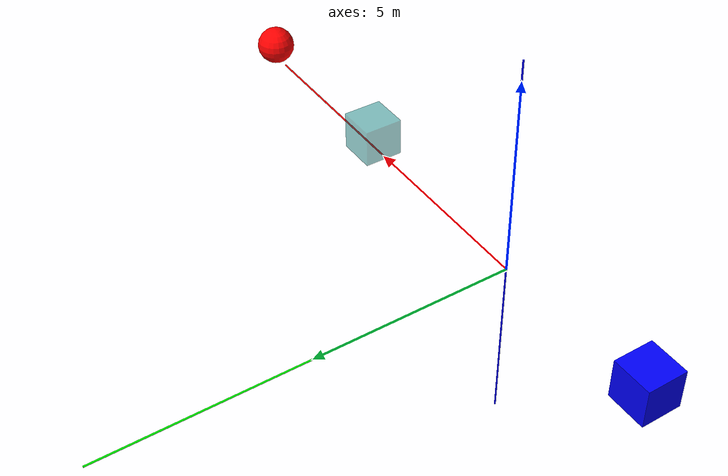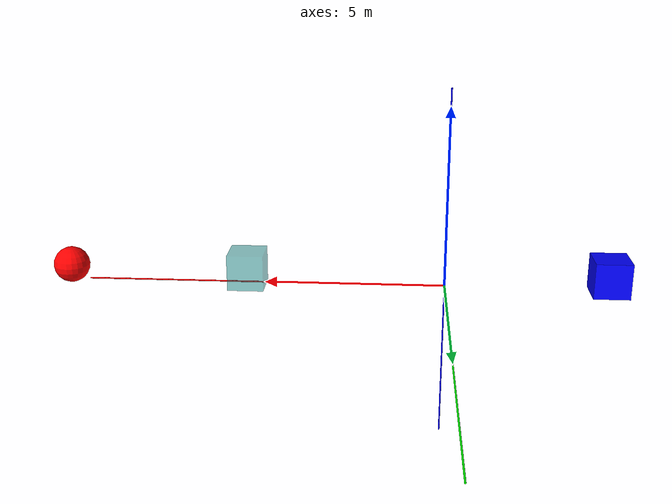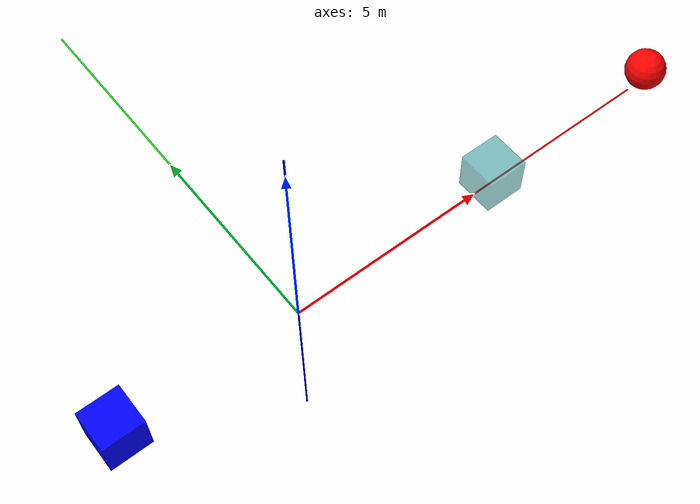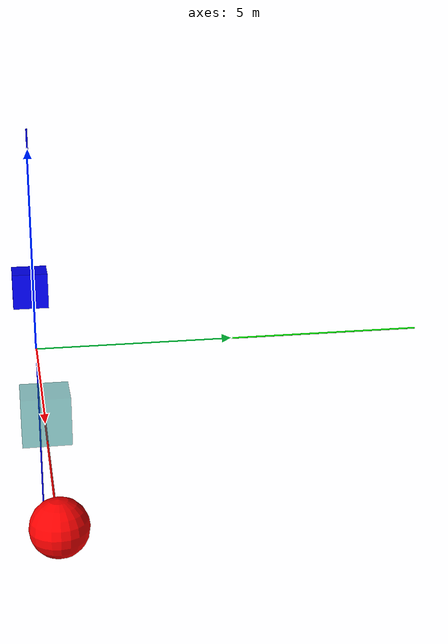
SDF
<?xml version="1.0" ?>
<sdf version="1.8">

    <!--
    To run the gazebo sim from the bridge
    gz sim -v 4 -r src/avoa3d/sdf/single_static.sdf
    -->

    <world name="3d_world">

        <physics name="1ms" type="ignored">
            <max_step_size>0.001</max_step_size>
            <real_time_factor>1.0</real_time_factor>
        </physics>
        <plugin
            filename="libignition-gazebo-physics-system.so"
            name="ignition::gazebo::systems::Physics">
        </plugin>
        <plugin
            filename="libignition-gazebo-user-commands-system.so"
            name="ignition::gazebo::systems::UserCommands">
        </plugin>
        <plugin
            filename="libignition-gazebo-scene-broadcaster-system.so"
            name="ignition::gazebo::systems::SceneBroadcaster">
        </plugin>

        <model name="world_frame">
            <static>true</static>
            <pose>0 0 0 0 0 0</pose>
            <link name="world_link">
                <!-- X axis -->
                <visual name="x_axis">
                    <geometry>
                        <cylinder>
                            <radius>0.02</radius>
                            <length>10.0</length>
                        </cylinder>
                    </geometry>
                    <material>
                        <ambient>1.0 0.0 0.0 1</ambient>
                        <diffuse>1.0 0.0 0.0 1</diffuse>  <!--red is X-->
                        <specular>1.0 0.0 0.0 1</specular>
                    </material>
                    <pose>5 0 0 0 1.5708 0</pose>
                </visual>

                <!-- Y axis -->
                <visual name="y_axis">
                    <geometry>
                        <cylinder>
                            <radius>0.02</radius>
                            <length>10.0</length>
                        </cylinder>
                    </geometry>
                    <material>
                        <ambient>0.0 1.0 0.0 1</ambient>
                        <diffuse>0.0 1.0 0.0 1</diffuse>   <!--green is Y-->
                        <specular>0.0 1.0 0.0 1</specular>
                    </material>
                    <pose>0 5 0 1.5708 0 0</pose>
                </visual>

                <!-- Z axis -->
                <visual name="z_axis">
                    <geometry>
                        <cylinder>
                            <radius>0.02</radius>
                            <length>10.0</length>
                        </cylinder>
                    </geometry>
                    <material>
                        <ambient>0.0 0.0 1.0 1</ambient>
                        <diffuse>0.0 0.0 1.0 1</diffuse>  <!--blue is Z-->
                        <specular>0.0 0.0 1.0 1</specular>
                    </material>
                    <pose>0 0 0.5 0 0 0</pose>
                </visual>
            </link>
        </model>

        <light type="directional" name="sun">
            <cast_shadows>true</cast_shadows>
            <pose>0 0 10 0 0 0</pose>
            <diffuse>0.8 0.8 0.8 1</diffuse>
            <specular>0.2 0.2 0.2 1</specular>
            <attenuation>
                <range>1000</range>
                <constant>0.9</constant>
                <linear>0.01</linear>
                <quadratic>0.001</quadratic>
            </attenuation>
            <direction>-0.5 0.1 -0.9</direction>
        </light>

        <!--!AGENTE -->
        <model name='agente' canonical_link='chassis'>
            <pose relative_to='world'>-5.0 0 0 0 0 0</pose>
            <gravity>false</gravity>
            <link name='chassis'>
            <pose relative_to='__model__'>0.5 0 0.4 0 0 0</pose>
            <inertial> <!--inertial properties of the link mass, inertia matix-->
                <mass>1.14395</mass>
                <inertia>
                    <ixx>0.095329</ixx>
                    <ixy>0</ixy>
                    <ixz>0</ixz>
                    <iyy>0.381317</iyy>
                    <iyz>0</iyz>
                    <izz>0.476646</izz>
                </inertia>
            </inertial>
            <visual name='visual'>
                <geometry>
                    <box>
                        <size>1.0 1.0 1.0</size>
                    </box>
                </geometry>
                <material>
                    <ambient>0.0 0.0 1.0 1</ambient>
                    <diffuse>0.0 0.0 1.0 1</diffuse>
                    <specular>0.0 0.0 1.0 1</specular>
                </material>
            </visual>
            <collision name='collision'>
                <geometry>
                    <box>
                        <size>1.0 1.0 1.0</size>
                    </box>
                </geometry>
            </collision>

            </link>
            <!-- plugin to publish-->
             <plugin
                filename="ignition-gazebo-joint-state-publisher-system"
                name="ignition::gazebo::systems::JointStatePublisher">
            </plugin>

            <plugin
                filename="ignition-gazebo-odometry-publisher-system"
                name="ignition::gazebo::systems::OdometryPublisher">
                <dimensions>3</dimensions>
            </plugin>
            <!-- plugin to control the velocity of the robot-->
            <plugin
                filename="ignition-gazebo-velocity-control-system"
                name="ignition::gazebo::systems::VelocityControl">
                <initial_linear>0.0 0 0</initial_linear>
                <initial_angular>0 0 0.0</initial_angular>
            </plugin>
            <!-- plugin to publish the pose of the robot (for the transforms)-->
            <plugin
                filename="libignition-gazebo-pose-publisher-system.so"
                name="ignition::gazebo::systems::PosePublisher">
                <topic>/agente/pose</topic> <!-- Adjust the topic as needed -->
                <frame_id>agente</frame_id>  <!-- The frame you want to publish -->
                <update_rate>30</update_rate> <!-- Rate at which to publish the pose -->
            </plugin>
        </model>

        <!-- !OBSTACULO ESTATICO SIMPLES-->
        <model name='obstacle' canonical_link='obstacle'>
            <static>true</static>
            <pose relative_to='world'>10 0 0 0 0 0</pose>
            <link name='obstacle'>
            <pose relative_to='__model__'>0.5 0 0.4 0 0 0</pose>

            <visual name='visual'>
                <geometry>
                    <sphere>
                        <radius>0.5</radius>
                    </sphere>
                </geometry>
                <material>
                    <ambient>1.0 0.0 0.0 1</ambient>
                    <diffuse>1.0 0.0 0.0 1</diffuse>
                    <specular>1.0 0.0 0.0 1</specular>
                </material>
            </visual>
            <collision name='collision'>
                <geometry>
                    <sphere>
                        <radius>0.5</radius>
                    </sphere>
                </geometry>
            </collision>

            </link>
            <plugin
                filename="ignition-gazebo-velocity-control-system"
                name="ignition::gazebo::systems::VelocityControl">
                <initial_linear>0.0 0 0</initial_linear>
                <initial_angular>0 0 0.0</initial_angular>
            </plugin>
            <plugin
                filename="ignition-gazebo-odometry-publisher-system"
                name="ignition::gazebo::systems::OdometryPublisher">
                <dimensions>3</dimensions>
            </plugin>
        </model>

        <!-- !GOAL-->
        <model name='goal' canonical_link='goal'>
            <static>true</static>
            <pose relative_to='world'>5 0 0 0 0 0</pose>
            <link name='goal'>
                <pose relative_to='__model__'>0.5 0 0.4 0 0 0</pose>

                <visual name='visual'>
                    <geometry>
                        <box>
                            <size>1.0 1.0 1.0</size>
                        </box>
                    </geometry>
                    <material>
                        <ambient>0.0 0.5 0.5 0.5</ambient>
                        <diffuse>0.0 0.5 0.5 0.5</diffuse>
                        <specular>0.0 0.5 0.5 0.5</specular>
                    </material>
                </visual>

            </link>

            <!-- Plugins for the goal model (if needed, usually not for a static goal) -->
            <plugin
                filename="ignition-gazebo-velocity-control-system"
                name="ignition::gazebo::systems::VelocityControl">
                <initial_linear>0.0 0 0</initial_linear>
                <initial_angular>0 0 0.0</initial_angular>
            </plugin>
            <plugin
                filename="ignition-gazebo-odometry-publisher-system"
                name="ignition::gazebo::systems::OdometryPublisher">
                <dimensions>3</dimensions>
            </plugin>
        </model>
    </world>
</sdf>
